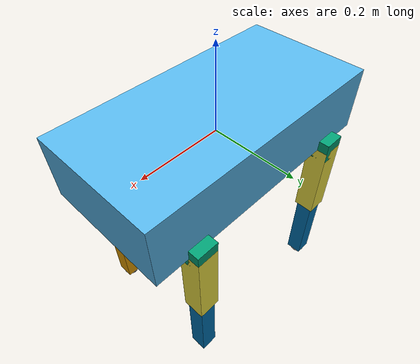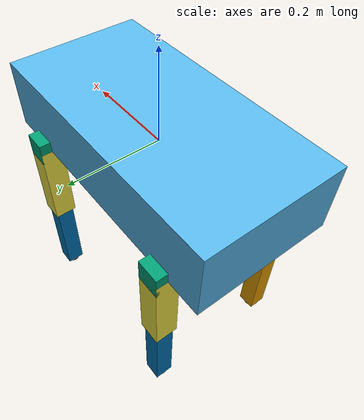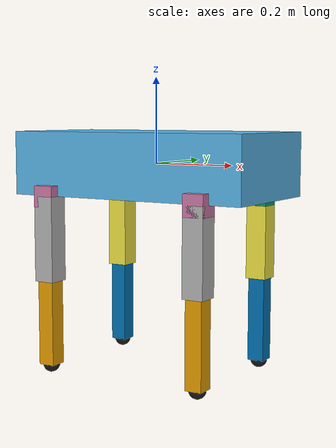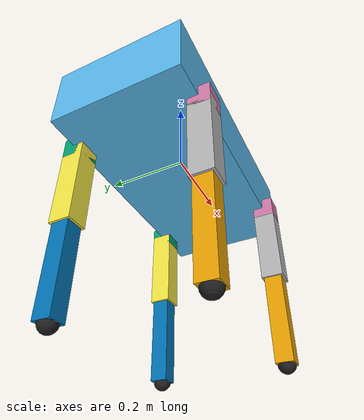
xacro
<?xml version="1.0"?>
<robot name="dog_quadruped" xmlns:xacro="http://ros.org/wiki/xacro">

  <!-- =====================
       Global properties
       ===================== -->
  <xacro:property name="robot" value="dog"/>
  <xacro:property name="mass_body" value="6.0"/>
  <xacro:property name="mass_leg" value="0.5"/>

  <!-- Body dimensions -->
  <xacro:property name="body_x" value="0.60"/>
  <xacro:property name="body_y" value="0.30"/>
  <xacro:property name="body_z" value="0.15"/>

  <!-- Leg geometry (simple box links) -->
  <xacro:property name="hip_x" value="0.05"/>
  <xacro:property name="hip_y" value="0.05"/>
  <xacro:property name="hip_z" value="0.05"/>

  <xacro:property name="thigh_x" value="0.05"/>
  <xacro:property name="thigh_y" value="0.05"/>
  <xacro:property name="thigh_z" value="0.20"/>

  <xacro:property name="shank_x" value="0.04"/>
  <xacro:property name="shank_y" value="0.04"/>
  <xacro:property name="shank_z" value="0.20"/>

  <xacro:property name="foot_r" value="0.02"/>

  <!-- Hip locations relative to body center (in base_link/body frame) -->
  <xacro:property name="x_front" value="${ body_x/2 - 0.10 }"/>
  <xacro:property name="x_rear"  value="${ -body_x/2 + 0.10 }"/>
  <xacro:property name="y_left"  value="${ body_y/2 }"/>
  <xacro:property name="y_right" value="${ -body_y/2 }"/>
  <xacro:property name="z_hip"   value="${ -body_z/2 }"/>

  <!-- =====================
       Inertia helpers
       ===================== -->
  <xacro:macro name="box_inertia" params="x y z mass">
    <inertia ixx="${0.0833333 * mass * (y*y + z*z)}" ixy="0.0" ixz="0.0"
             iyy="${0.0833333 * mass * (x*x + z*z)}" iyz="0.0"
             izz="${0.0833333 * mass * (x*x + y*y)}" />
  </xacro:macro>

  <xacro:macro name="box_inertial" params="x y z mass *origin">
    <inertial>
      <mass value="${mass}"/>
      <xacro:insert_block name="origin"/>
      <xacro:box_inertia x="${x}" y="${y}" z="${z}" mass="${mass}"/>
    </inertial>
  </xacro:macro>

  <!-- =====================
       Base + body
       ===================== -->
  <link name="${robot}/base_link"/>

  <link name="${robot}/trunk">
    <xacro:box_inertial x="${body_x}" y="${body_y}" z="${body_z}" mass="${mass_body}">
      <origin xyz="0 0 0"/>
    </xacro:box_inertial>

    <visual>
      <origin xyz="0 0 0" rpy="0 0 0"/>
      <geometry><box size="${body_x} ${body_y} ${body_z}"/></geometry>
    </visual>

    <collision>
      <origin xyz="0 0 0" rpy="0 0 0"/>
      <geometry><box size="${body_x} ${body_y} ${body_z}"/></geometry>
    </collision>
  </link>

  <joint name="${robot}/base_joint" type="fixed">
    <origin xyz="0 0 0" rpy="0 0 0"/>
    <parent link="${robot}/base_link"/>
    <child link="${robot}/trunk"/>
  </joint>

  <!-- =====================
       Leg macro (3-DoF)
       hip_abd (roll), hip_pitch, knee_pitch
       ===================== -->
  <xacro:macro name="leg" params="prefix x y">
    <!-- Hip link (small cube) -->
    <link name="${robot}/${prefix}_hip">
      <xacro:box_inertial x="${hip_x}" y="${hip_y}" z="${hip_z}" mass="${mass_leg}">
        <origin xyz="0 0 0"/>
      </xacro:box_inertial>
      <visual>
        <origin xyz="0 0 0" rpy="0 0 0"/>
        <geometry><box size="${hip_x} ${hip_y} ${hip_z}"/></geometry>
      </visual>
      <collision>
        <origin xyz="0 0 0" rpy="0 0 0"/>
        <geometry><box size="${hip_x} ${hip_y} ${hip_z}"/></geometry>
      </collision>
    </link>

    <!-- Thigh link (box along -Z) -->
    <link name="${robot}/${prefix}_thigh">
      <xacro:box_inertial x="${thigh_x}" y="${thigh_y}" z="${thigh_z}" mass="${mass_leg}">
        <origin xyz="0 0 ${-thigh_z/2}"/>
      </xacro:box_inertial>
      <visual>
        <origin xyz="0 0 ${-thigh_z/2}" rpy="0 0 0"/>
        <geometry><box size="${thigh_x} ${thigh_y} ${thigh_z}"/></geometry>
      </visual>
      <collision>
        <origin xyz="0 0 ${-thigh_z/2}" rpy="0 0 0"/>
        <geometry><box size="${thigh_x} ${thigh_y} ${thigh_z}"/></geometry>
      </collision>
    </link>

    <!-- Shank link (box along -Z) -->
    <link name="${robot}/${prefix}_shank">
      <xacro:box_inertial x="${shank_x}" y="${shank_y}" z="${shank_z}" mass="${mass_leg}">
        <origin xyz="0 0 ${-shank_z/2}"/>
      </xacro:box_inertial>
      <visual>
        <origin xyz="0 0 ${-shank_z/2}" rpy="0 0 0"/>
        <geometry><box size="${shank_x} ${shank_y} ${shank_z}"/></geometry>
      </visual>
      <collision>
        <origin xyz="0 0 ${-shank_z/2}" rpy="0 0 0"/>
        <geometry><box size="${shank_x} ${shank_y} ${shank_z}"/></geometry>
      </collision>
    </link>

    <!-- Foot (sphere) -->
    <link name="${robot}/${prefix}_foot">
      <inertial>
        <mass value="${0.05}"/>
        <origin xyz="0 0 0"/>
        <inertia ixx="1e-5" ixy="0" ixz="0" iyy="1e-5" iyz="0" izz="1e-5"/>
      </inertial>
      <visual>
        <origin xyz="0 0 0" rpy="0 0 0"/>
        <geometry><sphere radius="${foot_r}"/></geometry>
      </visual>
      <collision>
        <origin xyz="0 0 0" rpy="0 0 0"/>
        <geometry><sphere radius="${foot_r}"/></geometry>
      </collision>
    </link>

    <!-- Joints -->
    <!-- Hip ab/ad: rotate about X (roll) -->
    <joint name="${robot}/${prefix}_hip_abd" type="revolute">
      <origin xyz="${x} ${y} ${z_hip}" rpy="0 0 0"/>
      <parent link="${robot}/trunk"/>
      <child link="${robot}/${prefix}_hip"/>
      <axis xyz="1 0 0"/>
      <limit lower="-0.6" upper="0.6" effort="40" velocity="8"/>
      <dynamics damping="0.2" friction="0.0"/>
    </joint>

    <!-- Hip pitch: rotate about Y -->
    <joint name="${robot}/${prefix}_hip_pitch" type="revolute">
      <origin xyz="0 0 0" rpy="0 0 0"/>
      <parent link="${robot}/${prefix}_hip"/>
      <child link="${robot}/${prefix}_thigh"/>
      <axis xyz="0 1 0"/>
      <limit lower="-1.2" upper="1.2" effort="40" velocity="8"/>
      <dynamics damping="0.2" friction="0.0"/>
    </joint>

    <!-- Knee pitch: rotate about Y, located at end of thigh -->
    <joint name="${robot}/${prefix}_knee" type="revolute">
      <origin xyz="0 0 ${-thigh_z}" rpy="0 0 0"/>
      <parent link="${robot}/${prefix}_thigh"/>
      <child link="${robot}/${prefix}_shank"/>
      <axis xyz="0 1 0"/>
      <limit lower="-2.2" upper="0.0" effort="40" velocity="10"/>
      <dynamics damping="0.2" friction="0.0"/>
    </joint>

    <!-- Fixed joint from shank end to foot -->
    <joint name="${robot}/${prefix}_ankle_fixed" type="fixed">
      <origin xyz="0 0 ${-shank_z}" rpy="0 0 0"/>
      <parent link="${robot}/${prefix}_shank"/>
      <child link="${robot}/${prefix}_foot"/>
    </joint>

    <!-- Gazebo friction for the foot -->
    <gazebo reference="${robot}/${prefix}_foot">
      <mu1>2.0</mu1>
      <mu2>2.0</mu2>
      <kp>100000.0</kp>
      <kd>10.0</kd>
      <material>Gazebo/Black</material>
    </gazebo>
  </xacro:macro>

  <!-- =====================
       Instantiate 4 legs
       ===================== -->
  <xacro:leg prefix="lf" x="${x_front}" y="${y_left}"/>
  <xacro:leg prefix="rf" x="${x_front}" y="${y_right}"/>
  <xacro:leg prefix="lh" x="${x_rear}"  y="${y_left}"/>
  <xacro:leg prefix="rh" x="${x_rear}"  y="${y_right}"/>

  <!-- =====================
       ros2_control (Gazebo)
       ===================== -->
  <xacro:arg name="controllers_file" default="dog_controllers.yaml"/>

  <ros2_control name="GazeboSystem" type="system">
    <hardware>
      <!-- For Gazebo Classic + gazebo_ros2_control -->
      <plugin>gz_ros2_control/GazeboSimSystem</plugin>
    </hardware>

    <joint name="dog/lf_hip_abd">
      <command_interface name="position"/>
      <state_interface name="position"/>
      <state_interface name="velocity"/>
    </joint>
    <joint name="dog/lf_hip_pitch">
      <command_interface name="position"/>
      <state_interface name="position"/>
      <state_interface name="velocity"/>
    </joint>
    <joint name="dog/lf_knee">
      <command_interface name="position"/>
      <state_interface name="position"/>
      <state_interface name="velocity"/>
    </joint>
    <joint name="dog/rf_hip_abd">
      <command_interface name="position"/>
      <state_interface name="position"/>
      <state_interface name="velocity"/>
    </joint>
    <joint name="dog/rf_hip_pitch">
      <command_interface name="position"/>
      <state_interface name="position"/>
      <state_interface name="velocity"/>
    </joint>
    <joint name="dog/rf_knee">
      <command_interface name="position"/>
      <state_interface name="position"/>
      <state_interface name="velocity"/>
    </joint>
    <joint name="dog/lh_hip_abd">
      <command_interface name="position"/>
      <state_interface name="position"/>
      <state_interface name="velocity"/>
    </joint>
    <joint name="dog/lh_hip_pitch">
      <command_interface name="position"/>
      <state_interface name="position"/>
      <state_interface name="velocity"/>
    </joint>
    <joint name="dog/lh_knee">
      <command_interface name="position"/>
      <state_interface name="position"/>
      <state_interface name="velocity"/>
    </joint>
    <joint name="dog/rh_hip_abd">
      <command_interface name="position"/>
      <state_interface name="position"/>
      <state_interface name="velocity"/>
    </joint>
    <joint name="dog/rh_hip_pitch">
      <command_interface name="position"/>
      <state_interface name="position"/>
      <state_interface name="velocity"/>
    </joint>
    <joint name="dog/rh_knee">
      <command_interface name="position"/>
      <state_interface name="position"/>
      <state_interface name="velocity"/>
    </joint>
  </ros2_control>

  <!-- Gazebo plugin to enable control of joints -->
  <gazebo>
    <plugin filename="libgz_ros2_control-system.so" name="gz_ros2_control::GazeboSimROS2ControlPlugin">
      <parameters>/ros_ws/src/biorobotics_tutorial/models/config/dog_quadruped_config.yaml</parameters>
    </plugin>
  </gazebo>

</robot>
